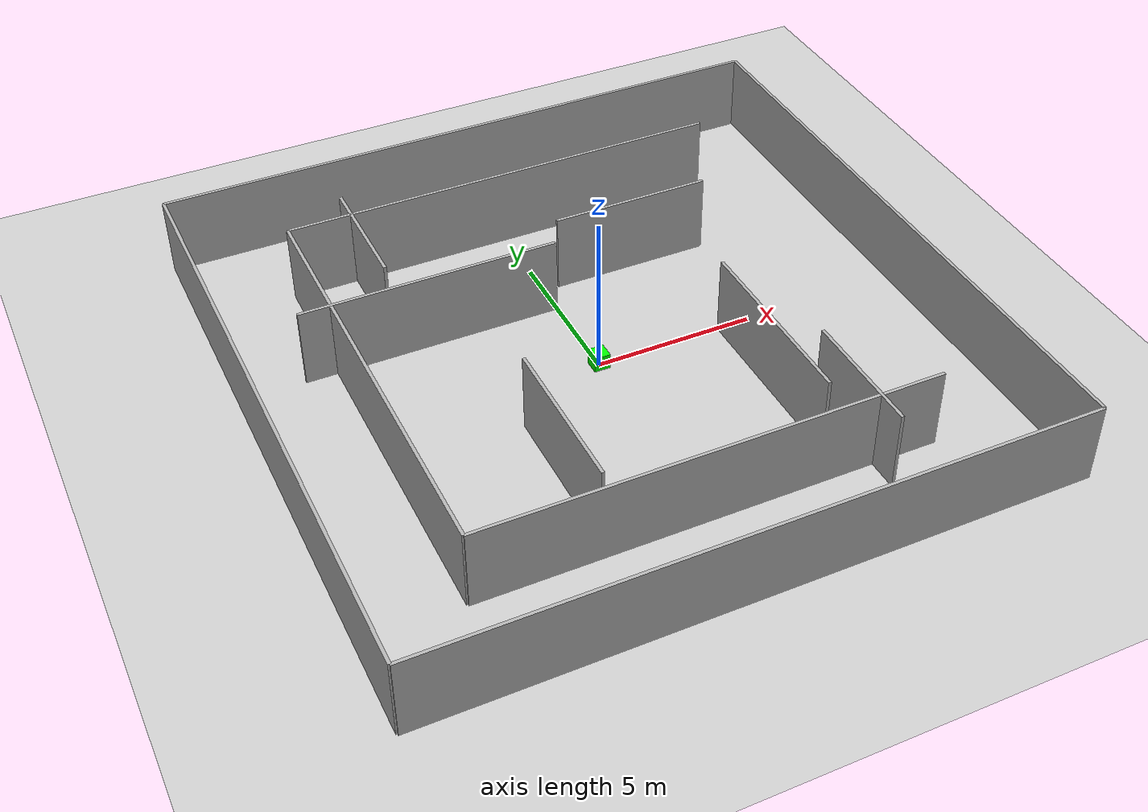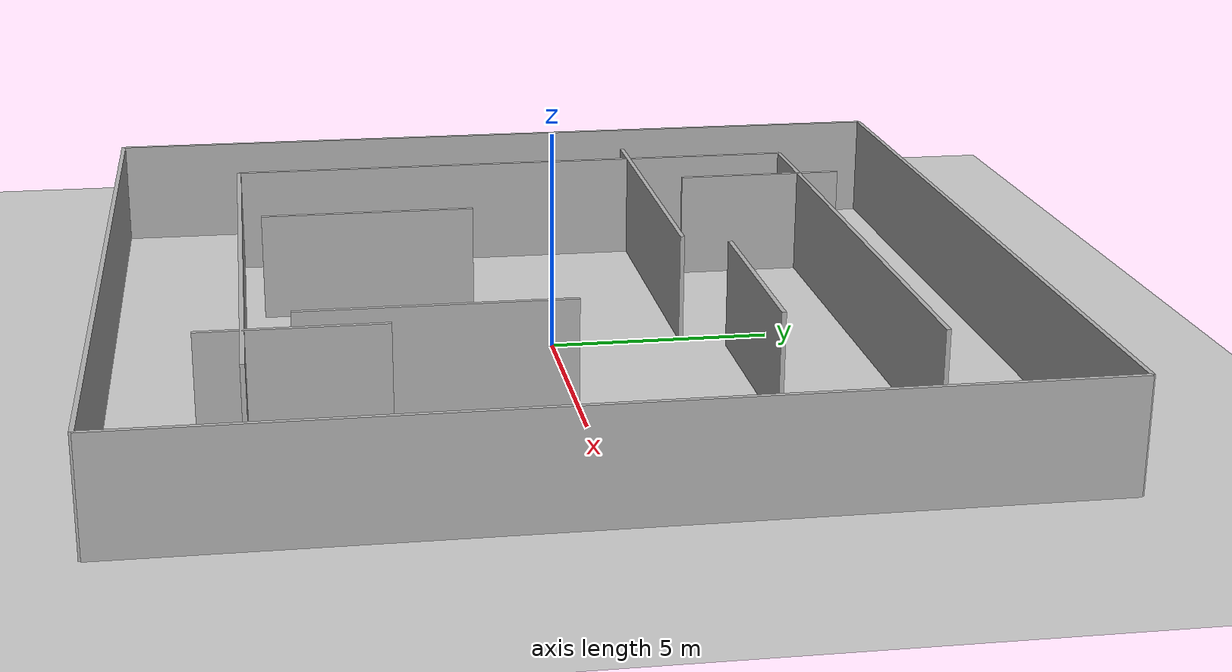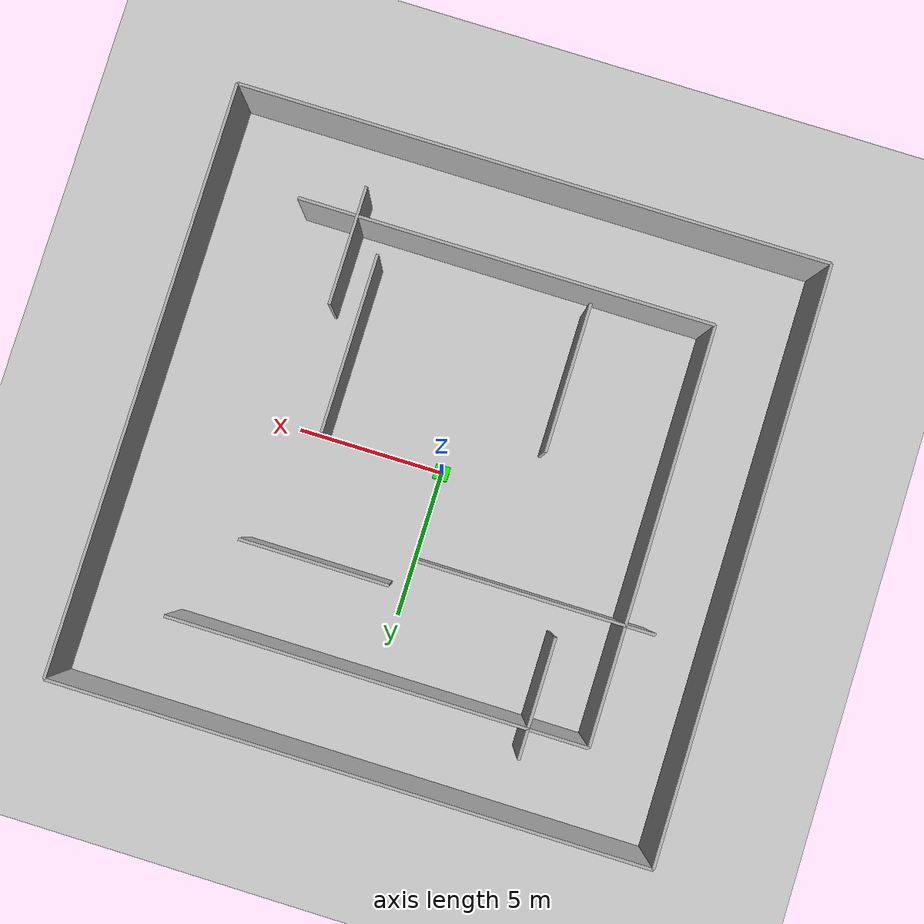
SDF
<?xml version="1.0" ?>
<sdf version="1.6">
  <world name="office_world">
    <!-- Include Sun and Ground Plane -->
    <include>
      <uri>model://sun</uri>
    </include>
    <include>
      <uri>model://ground_plane</uri>
    </include>
    <!-- Outer Boundary Walls -->
    <!-- Back Wall -->
    <model name="back_wall">
      <pose>0 10 0 0 0 0</pose>
      <link name="link">
        <collision name="collision">
          <geometry>
            <box>
              <size>20 0.1 2.5</size>
            </box>
          </geometry>
          <pose>0 0 1.25 0 0 0</pose>
        </collision>
        <visual name="visual">
          <geometry>
            <box>
              <size>20 0.1 2.5</size>
            </box>
          </geometry>
          <pose>0 0 1.25 0 0 0</pose>
          <material>
            <ambient>0.7 0.7 0.7 1</ambient>
          </material>
        </visual>
      </link>
    </model>

    <!-- Front Wall -->
    <model name="front_wall">
      <pose>0 -10 0 0 0 0</pose>
      <link name="link">
        <collision name="collision">
          <geometry>
            <box>
              <size>20 0.1 2.5</size>
            </box>
          </geometry>
          <pose>0 0 1.25 0 0 0</pose>
        </collision>
        <visual name="visual">
          <geometry>
            <box>
              <size>20 0.1 2.5</size>
            </box>
          </geometry>
          <pose>0 0 1.25 0 0 0</pose>
          <material>
            <ambient>0.7 0.7 0.7 1</ambient>
          </material>
        </visual>
      </link>
    </model>

    <!-- Left Wall -->
    <model name="left_wall">
      <pose>-10 0 0 0 0 1.5708</pose>
      <link name="link">
        <collision name="collision">
          <geometry>
            <box>
              <size>20 0.1 2.5</size>
            </box>
          </geometry>
          <pose>0 0 1.25 0 0 0</pose>
        </collision>
        <visual name="visual">
          <geometry>
            <box>
              <size>20 0.1 2.5</size>
            </box>
          </geometry>
          <pose>0 0 1.25 0 0 0</pose>
          <material>
            <ambient>0.7 0.7 0.7 1</ambient>
          </material>
        </visual>
      </link>
    </model>

    <!-- Right Wall -->
    <model name="right_wall">
      <pose>10 0 0 0 0 1.5708</pose>
      <link name="link">
        <collision name="collision">
          <geometry>
            <box>
              <size>20 0.1 2.5</size>
            </box>
          </geometry>
          <pose>0 0 1.25 0 0 0</pose>
        </collision>
        <visual name="visual">
          <geometry>
            <box>
              <size>20 0.1 2.5</size>
            </box>
          </geometry>
          <pose>0 0 1.25 0 0 0</pose>
          <material>
            <ambient>0.7 0.7 0.7 1</ambient>
          </material>
        </visual>
      </link>
    </model>

    <!-- Inner Maze Walls -->
    <!-- Creating Complex Pathways and Dead Ends -->
    <!-- Horizontal Walls -->
    <model name="inner_wall_1">
      <pose>0 7 0 0 0 0</pose>
      <link name="link">
        <collision name="collision">
          <geometry>
            <box>
              <size>14 0.1 2.5</size>
            </box>
          </geometry>
          <pose>0 0 1.25 0 0 0</pose>
        </collision>
        <visual name="visual">
          <geometry>
            <box>
              <size>14 0.1 2.5</size>
            </box>
          </geometry>
          <pose>0 0 1.25 0 0 0</pose>
          <material>
            <ambient>0.7 0.7 0.7 1</ambient>
          </material>
        </visual>
      </link>
    </model>

    <model name="inner_wall_2">
      <pose>0 -7 0 0 0 0</pose>
      <link name="link">
        <collision name="collision">
          <geometry>
            <box>
              <size>14 0.1 2.5</size>
            </box>
          </geometry>
          <pose>0 0 1.25 0 0 0</pose>
        </collision>
        <visual name="visual">
          <geometry>
            <box>
              <size>14 0.1 2.5</size>
            </box>
          </geometry>
          <pose>0 0 1.25 0 0 0</pose>
          <material>
            <ambient>0.7 0.7 0.7 1</ambient>
          </material>
        </visual>
      </link>
    </model>

    <!-- Vertical Walls -->
    <model name="inner_wall_3">
      <pose>-7 0 0 0 0 1.5708</pose>
      <link name="link">
        <collision name="collision">
          <geometry>
            <box>
              <size>14 0.1 2.5</size>
            </box>
          </geometry>
          <pose>0 0 1.25 0 0 0</pose>
        </collision>
        <visual name="visual">
          <geometry>
            <box>
              <size>14 0.1 2.5</size>
            </box>
          </geometry>
          <pose>0 0 1.25 0 0 0</pose>
          <material>
            <ambient>0.7 0.7 0.7 1</ambient>
          </material>
        </visual>
      </link>
    </model>

    <!-- Adding More Inner Walls to Create Dead Ends and Paths -->
    <model name="dead_end_wall_1">
      <pose>-4 3 0 0 0 0</pose>
      <link name="link">
        <collision name="collision">
          <geometry>
            <box>
              <size>8 0.1 2.5</size>
            </box>
          </geometry>
          <pose>0 0 1.25 0 0 0</pose>
        </collision>
        <visual name="visual">
          <geometry>
            <box>
              <size>8 0.1 2.5</size>
            </box>
          </geometry>
          <pose>0 0 1.25 0 0 0</pose>
          <material>
            <ambient>0.7 0.7 0.7 1</ambient>
          </material>
        </visual>
      </link>
    </model>

    <model name="dead_end_wall_2">
      <pose>4 -3 0 0 0 1.5708</pose>
      <link name="link">
        <collision name="collision">
          <geometry>
            <box>
              <size>6 0.1 2.5</size>
            </box>
          </geometry>
          <pose>0 0 1.25 0 0 0</pose>
        </collision>
        <visual name="visual">
          <geometry>
            <box>
              <size>6 0.1 2.5</size>
            </box>
          </geometry>
          <pose>0 0 1.25 0 0 0</pose>
          <material>
            <ambient>0.7 0.7 0.7 1</ambient>
          </material>
        </visual>
      </link>
    </model>

    <model name="dead_end_wall_3">
      <pose>3 4 0 0 0 0</pose>
      <link name="link">
        <collision name="collision">
          <geometry>
            <box>
              <size>5 0.1 2.5</size>
            </box>
          </geometry>
          <pose>0 0 1.25 0 0 0</pose>
        </collision>
        <visual name="visual">
          <geometry>
            <box>
              <size>5 0.1 2.5</size>
            </box>
          </geometry>
          <pose>0 0 1.25 0 0 0</pose>
          <material>
            <ambient>0.7 0.7 0.7 1</ambient>
          </material>
        </visual>
      </link>
    </model>

    <model name="dead_end_wall_4">
      <pose>-3 -4 0 0 0 1.5708</pose>
      <link name="link">
        <collision name="collision">
          <geometry>
            <box>
              <size>5 0.1 2.5</size>
            </box>
          </geometry>
          <pose>0 0 1.25 0 0 0</pose>
        </collision>
        <visual name="visual">
          <geometry>
            <box>
              <size>5 0.1 2.5</size>
            </box>
          </geometry>
          <pose>0 0 1.25 0 0 0</pose>
          <material>
            <ambient>0.7 0.7 0.7 1</ambient>
          </material>
        </visual>
      </link>
    </model>

    <!-- More Dead Ends to Increase Maze Complexity -->
    <model name="dead_end_wall_5">
      <pose>-5 6 0 0 0 1.5708</pose>
      <link name="link">
        <collision name="collision">
          <geometry>
            <box>
              <size>4 0.1 2.5</size>
            </box>
          </geometry>
          <pose>0 0 1.25 0 0 0</pose>
        </collision>
        <visual name="visual">
          <geometry>
            <box>
              <size>4 0.1 2.5</size>
            </box>
          </geometry>
          <pose>0 0 1.25 0 0 0</pose>
          <material>
            <ambient>0.7 0.7 0.7 1</ambient>
          </material>
        </visual>
      </link>
    </model>

    <model name="dead_end_wall_6">
      <pose>5 -6 0 0 0 1.5708</pose>
      <link name="link">
        <collision name="collision">
          <geometry>
            <box>
              <size>4 0.1 2.5</size>
            </box>
          </geometry>
          <pose>0 0 1.25 0 0 0</pose>
        </collision>
        <visual name="visual">
          <geometry>
            <box>
              <size>4 0.1 2.5</size>
            </box>
          </geometry>
          <pose>0 0 1.25 0 0 0</pose>
          <material>
            <ambient>0.7 0.7 0.7 1</ambient>
          </material>
        </visual>
      </link>
    </model>

    <!-- Goal at the Center of the Maze -->
    <model name="goal">
      <pose>0 0 0 0 0 0</pose>
      <link name="link">
        <collision name="collision">
          <geometry>
            <box>
              <size>0.5 0.5 0.5</size>
            </box>
          </geometry>
          <pose>0 0 0.25 0 0 0</pose>
        </collision>
        <visual name="visual">
          <geometry>
            <box>
              <size>0.5 0.5 0.5</size>
            </box>
          </geometry>
          <pose>0 0 0.25 0 0 0</pose>
          <material>
            <ambient>0 1 0 1</ambient> <!-- Green color to represent the goal -->
          </material>
        </visual>
      </link>
    </model>

  </world>
</sdf>
